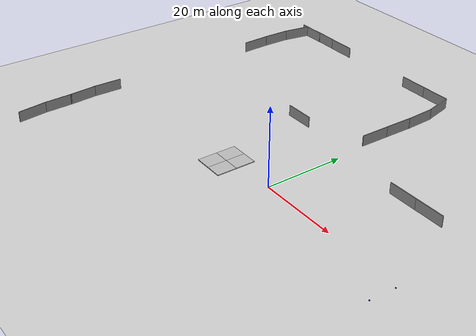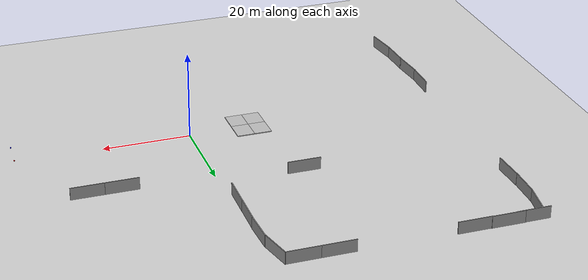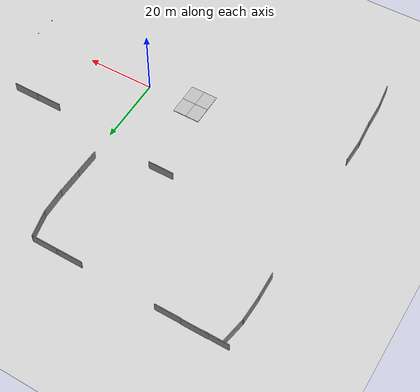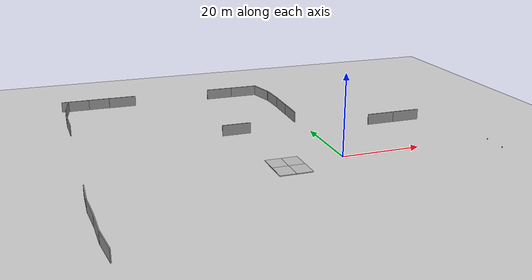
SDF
<sdf version="1.6">
 <world name="default">
  <light name="sun" type="directional">
   <pose>0 0 10 0 -0 0</pose>
   <diffuse>0.8 0.8 0.8 1</diffuse>
   <specular>0.2 0.2 0.2 1</specular>
   <attenuation>
    <range>1000</range>
    <constant>0.9</constant>
    <linear>0.01</linear>
    <quadratic>0.001</quadratic>
   </attenuation>
   <direction>-0.5 0.1 -0.9</direction>
  </light>
  <physics name="default_physics" default="0" type="ode">
   <ode>
    <solver>
     <type>quick</type>
     <iters>1000</iters>
     <sor>1.3</sor>
     <use_dynamic_moi_rescaling>0</use_dynamic_moi_rescaling>
    </solver>
    <constraints>
     <cfm>0</cfm>
     <erp>0.2</erp>
     <contact_max_correcting_vel>100</contact_max_correcting_vel>
     <contact_surface_layer>0.001</contact_surface_layer>
    </constraints>
   </ode>
   <max_step_size>0.01</max_step_size>
   <real_time_factor>1</real_time_factor>
   <real_time_update_rate>100</real_time_update_rate>
  </physics>
  <scene><ambient>0.4 0.4 0.4 1</ambient><background>0.7 0.7 0.7 1</background><shadows>1</shadows></scene>
  <spherical_coordinates>
   <surface_model>EARTH_WGS84</surface_model>
   <latitude_deg>47.3667</latitude_deg>
   <longitude_deg>8.55</longitude_deg>
   <elevation>500</elevation>
   <heading_deg>0</heading_deg>
  </spherical_coordinates>
  <model name="mud_box">
   <static>1</static>
   <link name="link">
    <collision name="collision"><geometry><box><size>8 10 0.2</size></box></geometry></collision>
    <visual name="visual_1">
     <pose>-2 2.5 0 0 -0 0</pose>
     <cast_shadows>0</cast_shadows>
     <geometry><box><size>4 5 0.2</size></box></geometry>
     <material>
      <script>
       <uri>model://mud_box/materials/scripts</uri>
       <uri>model://mud_box/materials/textures</uri>
       <name>vrc/mud</name>
      </script>
     </material>
    </visual>
    <visual name="visual_2">
     <pose>2 2.5 0 0 -0 0</pose>
     <cast_shadows>0</cast_shadows>
     <geometry><box><size>4 5 0.2</size></box></geometry>
     <material>
      <script>
       <uri>model://mud_box/materials/scripts</uri>
       <uri>model://mud_box/materials/textures</uri>
       <name>vrc/mud</name>
      </script>
     </material>
    </visual>
    <visual name="visual_3">
     <pose>2 -2.5 0 0 -0 0</pose>
     <cast_shadows>0</cast_shadows>
     <geometry><box><size>4 5 0.2</size></box></geometry>
     <material>
      <script>
       <uri>model://mud_box/materials/scripts</uri>
       <uri>model://mud_box/materials/textures</uri>
       <name>vrc/mud</name>
      </script>
     </material>
    </visual>
    <visual name="visual_4">
     <pose>-2 -2.5 0 0 -0 0</pose>
     <cast_shadows>0</cast_shadows>
     <geometry><box><size>4 5 0.2</size></box></geometry>
     <material>
      <script>
       <uri>model://mud_box/materials/scripts</uri>
       <uri>model://mud_box/materials/textures</uri>
       <name>vrc/mud</name>
      </script>
     </material>
    </visual>
    <velocity_decay><linear>0</linear><angular>0</angular></velocity_decay>
   </link>
   <pose>-14.1863 -1.32873 0 0 -0 0</pose>
  </model>
  <gravity>0 0 -9.8</gravity>
  <magnetic_field>6e-06 2.3e-05 -4.2e-05</magnetic_field>
  <atmosphere type="adiabatic"/>
  <model name="grey_wall_1">
   <static>1</static>
   <link name="link">
    <pose>0 0 1.4 0 -0 0</pose>
    <collision name="collision"><geometry><box><size>7.5 0.2 2.8</size></box></geometry></collision>
    <visual name="visual">
     <cast_shadows>0</cast_shadows>
     <geometry><box><size>7.5 0.2 2.8</size></box></geometry>
     <material>
      <script>
       <uri>model://grey_wall/materials/scripts</uri>
       <uri>model://grey_wall/materials/textures</uri>
       <name>vrc/grey_wall</name>
      </script>
     </material>
    </visual>
   </link>
   <pose>-42.7899 58.2019 0 0 -0 0</pose>
  </model>
  <model name="grey_wall_2">
   <static>1</static>
   <link name="link">
    <pose>0 0 1.4 0 -0 0</pose>
    <collision name="collision"><geometry><box><size>7.5 0.2 2.8</size></box></geometry></collision>
    <visual name="visual">
     <cast_shadows>0</cast_shadows>
     <geometry><box><size>7.5 0.2 2.8</size></box></geometry>
     <material>
      <script>
       <uri>model://grey_wall/materials/scripts</uri>
       <uri>model://grey_wall/materials/textures</uri>
       <name>vrc/grey_wall</name>
      </script>
     </material>
    </visual>
   </link>
   <pose>-50.2528 58.3002 0 0 -0 0</pose>
  </model>
  <model name="grey_wall_3">
   <static>1</static>
   <link name="link">
    <pose>0 0 1.4 0 -0 0</pose>
    <collision name="collision"><geometry><box><size>7.5 0.2 2.8</size></box></geometry></collision>
    <visual name="visual">
     <cast_shadows>0</cast_shadows>
     <geometry><box><size>7.5 0.2 2.8</size></box></geometry>
     <material>
      <script>
       <uri>model://grey_wall/materials/scripts</uri>
       <uri>model://grey_wall/materials/textures</uri>
       <name>vrc/grey_wall</name>
      </script>
     </material>
    </visual>
   </link>
   <pose>-55.9556 58.2233 0 0 -0 0</pose>
  </model>
  <model name="grey_wall_4">
   <static>1</static>
   <link name="link">
    <pose>0 0 1.4 0 -0 0</pose>
    <collision name="collision"><geometry><box><size>7.5 0.2 2.8</size></box></geometry></collision>
    <visual name="visual">
     <cast_shadows>0</cast_shadows>
     <geometry><box><size>7.5 0.2 2.8</size></box></geometry>
     <material>
      <script>
       <uri>model://grey_wall/materials/scripts</uri>
       <uri>model://grey_wall/materials/textures</uri>
       <name>vrc/grey_wall</name>
      </script>
     </material>
    </visual>
   </link>
   <pose>-13.8824 57.7761 0 0 -0 0</pose>
  </model>
  <model name="grey_wall_5">
   <static>1</static>
   <link name="link">
    <pose>0 0 1.4 0 -0 0</pose>
    <collision name="collision"><geometry><box><size>7.5 0.2 2.8</size></box></geometry></collision>
    <visual name="visual">
     <cast_shadows>0</cast_shadows>
     <geometry><box><size>7.5 0.2 2.8</size></box></geometry>
     <material>
      <script>
       <uri>model://grey_wall/materials/scripts</uri>
       <uri>model://grey_wall/materials/textures</uri>
       <name>vrc/grey_wall</name>
      </script>
     </material>
    </visual>
   </link>
   <pose>-6.43728 57.775 0 0 -0 0</pose>
  </model>
  <model name="grey_wall_6">
   <static>1</static>
   <link name="link">
    <pose>0 0 1.4 0 -0 0</pose>
    <collision name="collision"><geometry><box><size>7.5 0.2 2.8</size></box></geometry></collision>
    <visual name="visual">
     <cast_shadows>0</cast_shadows>
     <geometry><box><size>7.5 0.2 2.8</size></box></geometry>
     <material>
      <script>
       <uri>model://grey_wall/materials/scripts</uri>
       <uri>model://grey_wall/materials/textures</uri>
       <name>vrc/grey_wall</name>
      </script>
     </material>
    </visual>
   </link>
   <pose>-1.83475 54.2009 0 0 0 -1.35</pose>
  </model>
  <model name="grey_wall_7">
   <static>1</static>
   <link name="link">
    <pose>0 0 1.4 0 -0 0</pose>
    <collision name="collision"><geometry><box><size>7.5 0.2 2.8</size></box></geometry></collision>
    <visual name="visual">
     <cast_shadows>0</cast_shadows>
     <geometry><box><size>7.5 0.2 2.8</size></box></geometry>
     <material>
      <script>
       <uri>model://grey_wall/materials/scripts</uri>
       <uri>model://grey_wall/materials/textures</uri>
       <name>vrc/grey_wall</name>
      </script>
     </material>
    </visual>
   </link>
   <pose>-0.853548 46.7956 0 0 -0 1.6</pose>
  </model>
  <model name="grey_wall_8">
   <static>1</static>
   <link name="link">
    <pose>0 0 1.4 0 -0 0</pose>
    <collision name="collision"><geometry><box><size>7.5 0.2 2.8</size></box></geometry></collision>
    <visual name="visual">
     <cast_shadows>0</cast_shadows>
     <geometry><box><size>7.5 0.2 2.8</size></box></geometry>
     <material>
      <script>
       <uri>model://grey_wall/materials/scripts</uri>
       <uri>model://grey_wall/materials/textures</uri>
       <name>vrc/grey_wall</name>
      </script>
     </material>
    </visual>
   </link>
   <pose>-0.857263 39.377 0 0 -0 1.55</pose>
  </model>
  <model name="grey_wall_9">
   <static>1</static>
   <link name="link">
    <pose>0 0 1.4 0 -0 0</pose>
    <collision name="collision"><geometry><box><size>7.5 0.2 2.8</size></box></geometry></collision>
    <visual name="visual">
     <cast_shadows>0</cast_shadows>
     <geometry><box><size>7.5 0.2 2.8</size></box></geometry>
     <material>
      <script>
       <uri>model://grey_wall/materials/scripts</uri>
       <uri>model://grey_wall/materials/textures</uri>
       <name>vrc/grey_wall</name>
      </script>
     </material>
    </visual>
   </link>
   <pose>-18.8579 23.6513 0 0 -0 0</pose>
  </model>
  <model name="grey_wall_10">
   <static>1</static>
   <link name="link">
    <pose>0 0 1.4 0 -0 0</pose>
    <collision name="collision"><geometry><box><size>7.5 0.2 2.8</size></box></geometry></collision>
    <visual name="visual">
     <cast_shadows>0</cast_shadows>
     <geometry><box><size>7.5 0.2 2.8</size></box></geometry>
     <material>
      <script>
       <uri>model://grey_wall/materials/scripts</uri>
       <uri>model://grey_wall/materials/textures</uri>
       <name>vrc/grey_wall</name>
      </script>
     </material>
    </visual>
   </link>
   <pose>-0.997838 32.0624 0 0 -0 1.55</pose>
  </model>
  <model name="grey_wall_11">
   <static>1</static>
   <link name="link">
    <pose>0 0 1.4 0 -0 0</pose>
    <collision name="collision"><geometry><box><size>7.5 0.2 2.8</size></box></geometry></collision>
    <visual name="visual">
     <cast_shadows>0</cast_shadows>
     <geometry><box><size>7.5 0.2 2.8</size></box></geometry>
     <material>
      <script>
       <uri>model://grey_wall/materials/scripts</uri>
       <uri>model://grey_wall/materials/textures</uri>
       <name>vrc/grey_wall</name>
      </script>
     </material>
    </visual>
   </link>
   <pose>-58.4949 54.5233 0 0 -0 1.4</pose>
  </model>
  <model name="grey_wall_12">
   <static>1</static>
   <link name="link">
    <pose>0 0 1.4 0 -0 0</pose>
    <collision name="collision"><geometry><box><size>7.5 0.2 2.8</size></box></geometry></collision>
    <visual name="visual">
     <cast_shadows>0</cast_shadows>
     <geometry><box><size>7.5 0.2 2.8</size></box></geometry>
     <material>
      <script>
       <uri>model://grey_wall/materials/scripts</uri>
       <uri>model://grey_wall/materials/textures</uri>
       <name>vrc/grey_wall</name>
      </script>
     </material>
    </visual>
   </link>
   <pose>-59.2054 47.4198 0 0 0 -1.6</pose>
  </model>
  <model name="grey_wall_13">
   <static>1</static>
   <link name="link">
    <pose>0 0 1.4 0 -0 0</pose>
    <collision name="collision"><geometry><box><size>7.5 0.2 2.8</size></box></geometry></collision>
    <visual name="visual">
     <cast_shadows>0</cast_shadows>
     <geometry><box><size>7.5 0.2 2.8</size></box></geometry>
     <material>
      <script>
       <uri>model://grey_wall/materials/scripts</uri>
       <uri>model://grey_wall/materials/textures</uri>
       <name>vrc/grey_wall</name>
      </script>
     </material>
    </visual>
   </link>
   <pose>-59.178 40.1227 0 0 -0 1.6</pose>
  </model>
  <model name="grey_wall_14">
   <static>1</static>
   <link name="link">
    <pose>0 0 1.4 0 -0 0</pose>
    <collision name="collision"><geometry><box><size>7.5 0.2 2.8</size></box></geometry></collision>
    <visual name="visual">
     <cast_shadows>0</cast_shadows>
     <geometry><box><size>7.5 0.2 2.8</size></box></geometry>
     <material>
      <script>
       <uri>model://grey_wall/materials/scripts</uri>
       <uri>model://grey_wall/materials/textures</uri>
       <name>vrc/grey_wall</name>
      </script>
     </material>
    </visual>
   </link>
   <pose>-58.4441 -28.9102 0 0 -0 1.7</pose>
  </model>
  <model name="grey_wall_15">
   <static>1</static>
   <link name="link">
    <pose>0 0 1.4 0 -0 0</pose>
    <collision name="collision"><geometry><box><size>7.5 0.2 2.8</size></box></geometry></collision>
    <visual name="visual">
     <cast_shadows>0</cast_shadows>
     <geometry><box><size>7.5 0.2 2.8</size></box></geometry>
     <material>
      <script>
       <uri>model://grey_wall/materials/scripts</uri>
       <uri>model://grey_wall/materials/textures</uri>
       <name>vrc/grey_wall</name>
      </script>
     </material>
    </visual>
   </link>
   <pose>-59.0228 -21.823 0 0 -0 1.6</pose>
  </model>
  <model name="grey_wall_16">
   <static>1</static>
   <link name="link">
    <pose>0 0 1.4 0 -0 0</pose>
    <collision name="collision"><geometry><box><size>7.5 0.2 2.8</size></box></geometry></collision>
    <visual name="visual">
     <cast_shadows>0</cast_shadows>
     <geometry><box><size>7.5 0.2 2.8</size></box></geometry>
     <material>
      <script>
       <uri>model://grey_wall/materials/scripts</uri>
       <uri>model://grey_wall/materials/textures</uri>
       <name>vrc/grey_wall</name>
      </script>
     </material>
    </visual>
   </link>
   <pose>-59.4126 -14.6162 0 0 -0 1.65</pose>
  </model>
  <model name="grey_wall_17">
   <static>1</static>
   <link name="link">
    <pose>0 0 1.4 0 -0 0</pose>
    <collision name="collision"><geometry><box><size>7.5 0.2 2.8</size></box></geometry></collision>
    <visual name="visual">
     <cast_shadows>0</cast_shadows>
     <geometry><box><size>7.5 0.2 2.8</size></box></geometry>
     <material>
      <script>
       <uri>model://grey_wall/materials/scripts</uri>
       <uri>model://grey_wall/materials/textures</uri>
       <name>vrc/grey_wall</name>
      </script>
     </material>
    </visual>
   </link>
   <pose>-59.61 -7.58529 0 0 -0 1.55</pose>
  </model>
  <model name="grey_wall_18">
   <static>1</static>
   <link name="link">
    <pose>0 0 1.4 0 -0 0</pose>
    <collision name="collision"><geometry><box><size>7.5 0.2 2.8</size></box></geometry></collision>
    <visual name="visual">
     <cast_shadows>0</cast_shadows>
     <geometry><box><size>7.5 0.2 2.8</size></box></geometry>
     <material>
      <script>
       <uri>model://grey_wall/materials/scripts</uri>
       <uri>model://grey_wall/materials/textures</uri>
       <name>vrc/grey_wall</name>
      </script>
     </material>
    </visual>
   </link>
   <pose>20.3803 19.9392 0 0 -0 0</pose>
  </model>
  <model name="grey_wall_19">
   <static>1</static>
   <link name="link">
    <pose>0 0 1.4 0 -0 0</pose>
    <collision name="collision"><geometry><box><size>7.5 0.2 2.8</size></box></geometry></collision>
    <visual name="visual">
     <cast_shadows>0</cast_shadows>
     <geometry><box><size>7.5 0.2 2.8</size></box></geometry>
     <material>
      <script>
       <uri>model://grey_wall/materials/scripts</uri>
       <uri>model://grey_wall/materials/textures</uri>
       <name>vrc/grey_wall</name>
      </script>
     </material>
    </visual>
   </link>
   <pose>27.8155 19.9335 0 0 -0 0</pose>
  </model>
  <model name="cube_b">
   <link name="link_2">
    <pose>0 0 0.1 0 -0 0</pose>
    <inertial>
     <mass>1</mass>
     <inertia>
      <ixx>0.166667</ixx>
      <ixy>0</ixy>
      <ixz>0</ixz>
      <iyy>0.166667</iyy>
      <iyz>0</iyz>
      <izz>0.166667</izz>
     </inertia>
    </inertial>
    <visual name="visual">
     <geometry><box><size>0.2 0.2 0.2</size></box></geometry>
     <material>
      <lighting>1</lighting>
      <script><uri>file://media/materials/scripts/gazebo.material</uri><name>Gazebo/Grey</name></script>
      <ambient>0 0 1 1</ambient>
      <diffuse>0 0 1 1</diffuse>
      <specular>0 0 0 1</specular>
      <emissive>0 0 0 1</emissive>
      <shader type="vertex"><normal_map>__default__</normal_map></shader>
     </material>
    </visual>
    <collision name="collision">
     <geometry><box><size>0.2 0.2 0.2</size></box></geometry>
     <surface>
      <friction>
       <ode><mu>1</mu><mu2>1</mu2><fdir1>0 0 0</fdir1><slip1>0</slip1><slip2>0</slip2></ode>
       <torsional>
        <coefficient>1</coefficient>
        <patch_radius>0</patch_radius>
        <surface_radius>0</surface_radius>
        <use_patch_radius>1</use_patch_radius>
        <ode><slip>0</slip></ode>
       </torsional>
      </friction>
      <bounce><restitution_coefficient>0</restitution_coefficient><threshold>1e+06</threshold></bounce>
      <contact>
       <collide_without_contact>0</collide_without_contact>
       <collide_without_contact_bitmask>1</collide_without_contact_bitmask>
       <collide_bitmask>1</collide_bitmask>
       <ode>
        <soft_cfm>0</soft_cfm>
        <soft_erp>0.2</soft_erp>
        <kp>1e+13</kp>
        <kd>1</kd>
        <max_vel>0.01</max_vel>
        <min_depth>0</min_depth>
       </ode>
       <bullet>
        <split_impulse>1</split_impulse>
        <split_impulse_penetration_threshold>-0.01</split_impulse_penetration_threshold>
        <soft_cfm>0</soft_cfm>
        <soft_erp>0.2</soft_erp>
        <kp>1e+13</kp>
        <kd>1</kd>
       </bullet>
      </contact>
     </surface>
    </collision>
   </link>
   <static>1</static>
   <pose>39.2499 -6.98322 0 0 -0 0</pose>
  </model>
  <model name="cube_r">
   <link name="link_2">
    <pose>0 0 0.1 0 -0 0</pose>
    <inertial>
     <mass>1</mass>
     <inertia>
      <ixx>0.166667</ixx>
      <ixy>0</ixy>
      <ixz>0</ixz>
      <iyy>0.166667</iyy>
      <iyz>0</iyz>
      <izz>0.166667</izz>
     </inertia>
    </inertial>
    <visual name="visual">
     <geometry><box><size>0.2 0.2 0.2</size></box></geometry>
     <material>
      <lighting>1</lighting>
      <script><uri>file://media/materials/scripts/gazebo.material</uri><name>Gazebo/Grey</name></script>
      <ambient>1 0 0 1</ambient>
      <diffuse>1 0 0 1</diffuse>
      <specular>0 0 0 1</specular>
      <emissive>0 0 0 1</emissive>
      <shader type="vertex"><normal_map>__default__</normal_map></shader>
     </material>
    </visual>
    <collision name="collision">
     <geometry><box><size>0.2 0.2 0.2</size></box></geometry>
     <surface>
      <friction>
       <ode><mu>1</mu><mu2>1</mu2><fdir1>0 0 0</fdir1><slip1>0</slip1><slip2>0</slip2></ode>
       <torsional>
        <coefficient>1</coefficient>
        <patch_radius>0</patch_radius>
        <surface_radius>0</surface_radius>
        <use_patch_radius>1</use_patch_radius>
        <ode><slip>0</slip></ode>
       </torsional>
      </friction>
      <bounce><restitution_coefficient>0</restitution_coefficient><threshold>1e+06</threshold></bounce>
      <contact>
       <collide_without_contact>0</collide_without_contact>
       <collide_without_contact_bitmask>1</collide_without_contact_bitmask>
       <collide_bitmask>1</collide_bitmask>
       <ode>
        <soft_cfm>0</soft_cfm>
        <soft_erp>0.2</soft_erp>
        <kp>1e+13</kp>
        <kd>1</kd>
        <max_vel>0.01</max_vel>
        <min_depth>0</min_depth>
       </ode>
       <bullet>
        <split_impulse>1</split_impulse>
        <split_impulse_penetration_threshold>-0.01</split_impulse_penetration_threshold>
        <soft_cfm>0</soft_cfm>
        <soft_erp>0.2</soft_erp>
        <kp>1e+13</kp>
        <kd>1</kd>
       </bullet>
      </contact>
     </surface>
    </collision>
   </link>
   <static>1</static>
   <pose>39.5522 -0.739118 0 0 -0 0</pose>
  </model>
  <model name="ground_plane">
   <static>1</static>
   <link name="link">
    <collision name="collision">
     <geometry><plane><normal>0 0 1</normal><size>100 100</size></plane></geometry>
     <surface><friction><ode><mu>100</mu><mu2>50</mu2></ode></friction></surface>
    </collision>
    <visual name="visual">
     <cast_shadows>0</cast_shadows>
     <geometry><plane><normal>0 0 1</normal><size>100 100</size></plane></geometry>
     <material>
      <script><uri>file://media/materials/scripts/gazebo.material</uri><name>Gazebo/Grey</name></script>
     </material>
    </visual>
   </link>
   <pose>-9.05575 9.86326 0 0 -0 0</pose>
  </model>
 </world>
</sdf>
